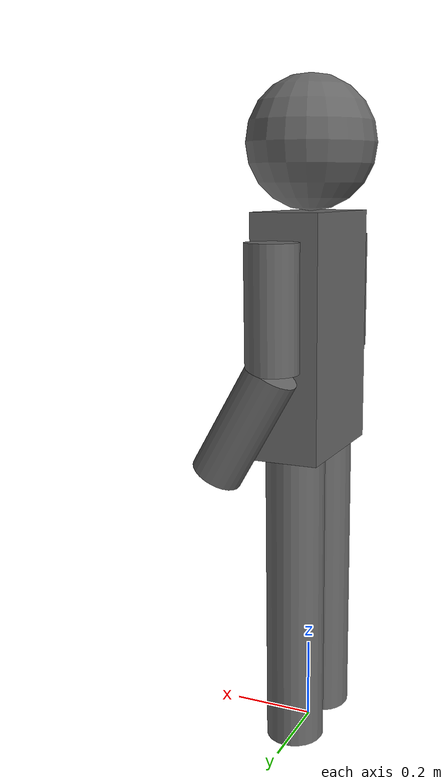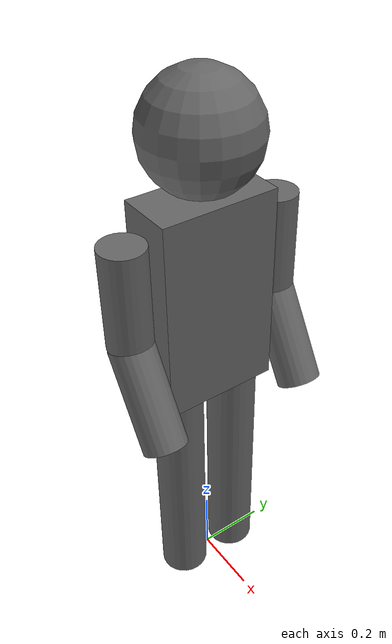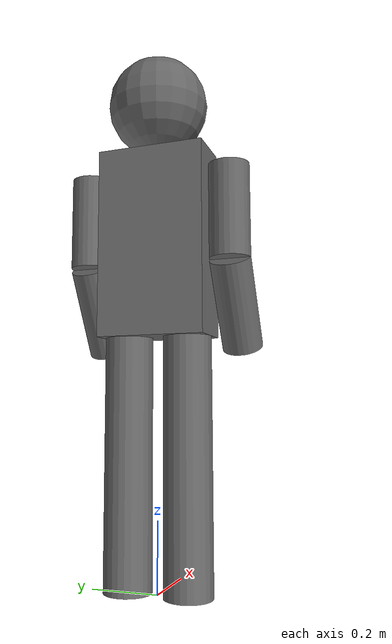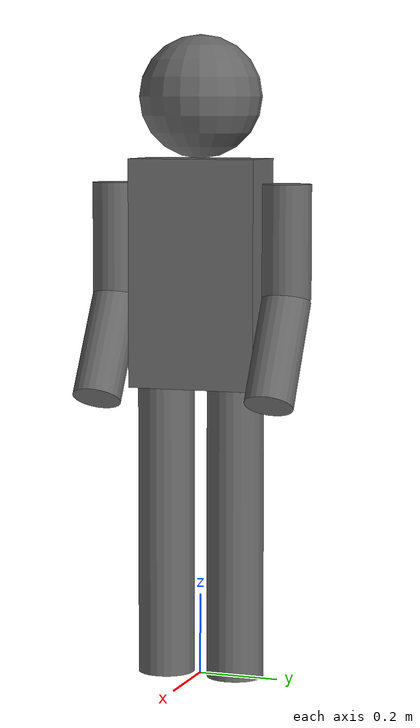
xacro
<?xml version="1.0"?>

<robot name="person"
       xmlns:xacro="http://ros.org/wiki/xacro">

  <!-- Included URDF Files -->
  <include filename="$(find bwi_gazebo_entities)/urdf/common.urdf.xacro" />
  <include filename="$(find bwi_gazebo_entities)/urdf/person.urdf.xacro" />
  <include filename="$(find bwi_gazebo_entities)/gazebo/automated_person.gazebo.xacro" />

  <!-- Add the person -->
  <xacro:person />

  <!-- Add the generic laser to do obstacle avoidance -->
  <xacro:generic_laser name="lidar" ros_topic="scan" update_rate="10" min_angle="${-M_PI/2}" max_angle="${M_PI/2}" />

</robot>

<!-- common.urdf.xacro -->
<root xmlns:xacro="http://ros.org/wiki/xacro">

  <!-- generic constants -->
  <xacro:property name="M_PI" value="3.14159265359" />

  <!-- colors -->
  <material name="light_grey">
    <color rgba="0.7 0.7 0.7 1" />
  </material>
  <material name="dark_grey">
    <color rgba="0.4 0.4 0.4 1" />
  </material>

</root>

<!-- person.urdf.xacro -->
<root xmlns:xacro="http://ros.org/wiki/xacro">

  <include filename="$(find bwi_gazebo_entities)/urdf/person.gazebo.xacro" />

  <xacro:macro name="person">

    <!-- root link, on the ground just below the person origin (torso) -->
    <link name="base_footprint">
     <visual>
        <origin xyz="0 0 0" rpy="0 0 0" />
        <geometry>
          <box size="0.001 0.001 0.001" />
        </geometry>
      </visual>
    </link>

    <joint name="base_link_joint" type="fixed">
      <origin xyz="0.0 0 1.0" rpy="0 0 0" />
      <parent link="base_footprint"/>
      <child link="base_link" />
    </joint>

    <!-- the person's torso -->
    <link name="base_link">
      <inertial>
        <mass value="0.01" />
        <origin xyz="0 0 0" />
        <inertia ixx="1.0" ixy="0.0" ixz="0.0"
          iyy="1.0" iyz="0.0"
          izz="1.0" />
      </inertial>
      <visual>
        <geometry>
          <box size="0.16 0.32 0.56" />
        </geometry>
        <material name="dark_grey" />
      </visual>
      <collision>
        <origin xyz="0 0 -0.25" />
        <geometry>
          <cylinder length="1.5" radius="0.3" />
        </geometry>
      </collision>
    </link>

    <!-- depth perception lidar -->
    <joint name="lidar_joint" type="fixed">
      <origin xyz="0.3 0 0" rpy="0 0 0" />
      <parent link="base_link"/>
      <child link="lidar_link" />
    </joint>
    <link name="lidar_link">
      <inertial>
        <mass value="0.001" />
        <origin xyz="0 0 0" />
        <inertia ixx="0.01" ixy="0.0" ixz="0.0"
          iyy="0.01" iyz="0.0"
          izz="0.01" />
      </inertial>
    </link>

    <!-- left leg -->
    <joint name="left_leg_joint" type="fixed">
      <origin xyz="0.0 0.09 -0.28" rpy="0 0 0" />
      <parent link="base_link"/>
      <child link="left_leg_link" />
    </joint>
    <link name="left_leg_link">
      <inertial>
        <mass value="0.01" />
        <origin xyz="0 0 0" />
        <inertia ixx="0.001" ixy="0.0" ixz="0.0"
          iyy="0.001" iyz="0.0"
          izz="0.001" />
      </inertial>
      <visual>
        <origin xyz="0 0 -0.36" />
        <geometry>
          <cylinder length="0.72" radius="0.07" />
        </geometry>
        <material name="dark_grey" />
      </visual>
    </link>

    <xacro:default_surface name="left_leg" />

    <!-- right leg -->
    <joint name="right_leg_joint" type="fixed">
      <origin xyz="0.0 -0.09 -0.28" rpy="0 0 0" />
      <parent link="base_link"/>
      <child link="right_leg_link" />
    </joint>
    <link name="right_leg_link">
      <inertial>
        <mass value="0.01" />
        <origin xyz="0 0 0" />
        <inertia ixx="0.001" ixy="0.0" ixz="0.0"
          iyy="0.001" iyz="0.0"
          izz="0.001" />
      </inertial>
      <visual>
        <origin xyz="0 0 -0.36" />
        <geometry>
          <cylinder length="0.72" radius="0.07" />
        </geometry>
        <material name="dark_grey" />
      </visual>
    </link>

    <xacro:default_surface name="right_leg" />

    <!-- head -->
    <joint name="head_joint" type="fixed">
      <origin xyz="0 0 0.43" rpy="0 0 0" />
      <parent link="base_link"/>
      <child link="head_link" />
    </joint>
    <link name="head_link">
      <inertial>
        <mass value="0.01" />
        <origin xyz="0 0 0" />
        <inertia ixx="0.001" ixy="0.0" ixz="0.0"
          iyy="0.001" iyz="0.0"
          izz="0.001" />
      </inertial>
      <visual>
        <geometry>
          <sphere radius="0.15" />
        </geometry>
        <material name="dark_grey" />
      </visual>
    </link>

    <!-- camera -->
    <joint name="camera_joint" type="fixed">
      <origin xyz="0.15 0 0" rpy="0 0 0" />
      <parent link="head_link"/>
      <child link="camera_link" />
    </joint>
    <link name="camera_link">
      <inertial>
        <mass value="0.001" />
        <origin xyz="0 0 0" />
        <inertia ixx="0.001" ixy="0.0" ixz="0.0"
          iyy="0.001" iyz="0.0"
          izz="0.001" />
      </inertial>
    </link>

    <!-- camera optical frame -->
    <joint name="camera_optical_joint" type="fixed">
      <origin xyz="0 0 0" rpy="-${M_PI/2} 0 -${M_PI/2}" />
      <parent link="camera_link"/>
      <child link="camera_optical_link" />
    </joint>
    <link name="camera_optical_link">
      <inertial>
        <mass value="0.001" />
        <origin xyz="0 0 0" />
        <inertia ixx="0.001" ixy="0.0" ixz="0.0"
          iyy="0.001" iyz="0.0"
          izz="0.001" />
      </inertial>
    </link>

    <!-- left arm -->
    <joint name="left_arm_joint" type="fixed">
      <origin xyz="0 0.22 0.22" rpy="0 ${M_PI} 0" />
      <parent link="base_link"/>
      <child link="left_arm_link" />
    </joint>
    <link name="left_arm_link">
      <inertial>
        <mass value="0.01" />
        <origin xyz="0 0 0" />
        <inertia ixx="0.001" ixy="0.0" ixz="0.0"
          iyy="0.001" iyz="0.0"
          izz="0.001" />
      </inertial>
      <visual>
        <origin xyz="0 0 0.14" />
        <geometry>
          <cylinder length="0.28" radius="0.06" />
        </geometry>
        <material name="dark_grey" />
      </visual>
    </link>

    <!-- left fore arm -->
    <joint name="left_forearm_joint" type="fixed">
      <origin xyz="0 0 0.28" rpy="0 -${M_PI/6} 0" />
      <parent link="left_arm_link"/>
      <child link="left_forearm_link" />
    </joint>
    <link name="left_forearm_link">
      <inertial>
        <mass value="0.01" />
        <origin xyz="0 0 0" />
        <inertia ixx="0.001" ixy="0.0" ixz="0.0"
          iyy="0.001" iyz="0.0"
          izz="0.001" />
      </inertial>
      <visual>
        <origin xyz="0 0 0.14" />
        <geometry>
          <cylinder length="0.28" radius="0.06" />
        </geometry>
        <material name="dark_grey" />
      </visual>
    </link>

    <!-- right arm -->
    <joint name="right_arm_joint" type="fixed">
      <origin xyz="0 -0.22 0.22" rpy="0 ${M_PI} 0" />
      <parent link="base_link"/>
      <child link="right_arm_link" />
    </joint>
    <link name="right_arm_link">
      <inertial>
        <mass value="0.01" />
        <origin xyz="0 0 0" />
        <inertia ixx="0.001" ixy="0.0" ixz="0.0"
          iyy="0.001" iyz="0.0"
          izz="0.001" />
      </inertial>
      <visual>
        <origin xyz="0 0 0.14" />
        <geometry>
          <cylinder length="0.28" radius="0.06" />
        </geometry>
        <material name="dark_grey" />
      </visual>
    </link>

    <!-- right fore arm -->
    <joint name="right_forearm_joint" type="fixed">
      <origin xyz="0 0 0.28" rpy="0 -${M_PI/6} 0" />
      <parent link="right_arm_link"/>
      <child link="right_forearm_link" />
    </joint>
    <link name="right_forearm_link">
      <inertial>
        <mass value="0.01" />
        <origin xyz="0 0 0" />
        <inertia ixx="0.001" ixy="0.0" ixz="0.0"
          iyy="0.001" iyz="0.0"
          izz="0.001" />
      </inertial>
      <visual>
        <origin xyz="0 0 0.14" />
        <geometry>
          <cylinder length="0.28" radius="0.06" />
        </geometry>
        <material name="dark_grey" />
      </visual>
    </link>

    <gazebo>
      <xacro:gazebo_person_drive />
      <xacro:gazebo_ros_controller />
    </gazebo>

  </xacro:macro>

</root>
